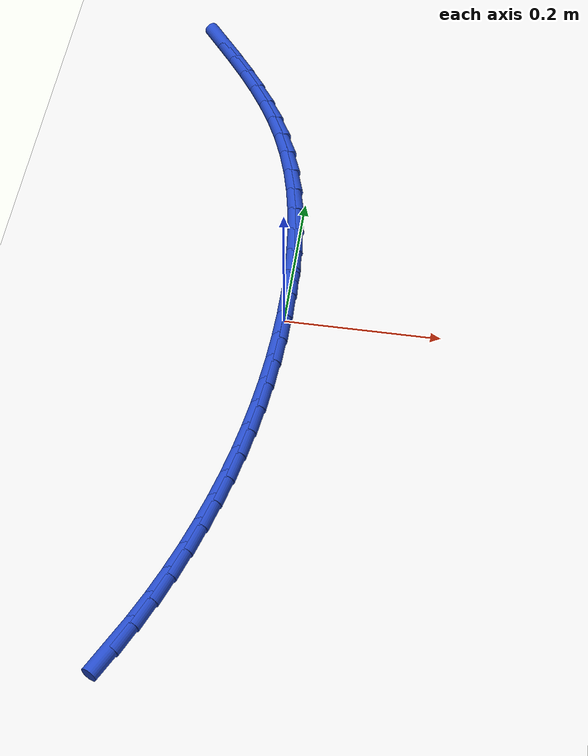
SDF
<sdf version="1.6">
 <world name="default">
  <model name="ground_plane">
   <static>1</static>
   <link name="link">
    <collision name="collision">
     <geometry><plane><normal>0 0 1</normal><size>100 100</size></plane></geometry>
     <surface><friction><ode><mu>100</mu><mu2>50</mu2></ode></friction></surface>
    </collision>
    <visual name="visual">
     <cast_shadows>0</cast_shadows>
     <geometry><plane><normal>0 0 1</normal><size>100 100</size></plane></geometry>
     <material>
      <script><uri>file://media/materials/scripts/gazebo.material</uri><name>Gazebo/WhiteGlow</name></script>
     </material>
    </visual>
   </link>
  </model>
  <model name="line">
   <link name="link_0">
    <pose>1.214306433183765e-17 2.7755575615628914e-17 0.01 0 1.57 1.5646358276059467</pose>
    <collision name="collision">
     <geometry><cylinder><radius>0.01</radius><length>0.08</length></cylinder></geometry>
    </collision>
    <visual name="visual">
     <material>
      <script><name>Gazebo/Blue</name><uri>file://media/materials/scripts/gazebo.material</uri></script>
     </material>
     <geometry><cylinder><radius>0.01</radius><length>0.08</length></cylinder></geometry>
    </visual>
   </link>
   <link name="link_1">
    <pose>0.00022275718261299585 0.036158492642460245 0.01 0 1.57 -1.5446809342096588</pose>
    <collision name="collision">
     <geometry><cylinder><radius>0.01</radius><length>0.08</length></cylinder></geometry>
    </collision>
    <visual name="visual">
     <material>
      <script><name>Gazebo/Blue</name><uri>file://media/materials/scripts/gazebo.material</uri></script>
     </material>
     <geometry><cylinder><radius>0.01</radius><length>0.08</length></cylinder></geometry>
    </visual>
   </link>
   <link name="link_2">
    <pose>-0.0007243705754948649 0.07241727861252063 0.01 0 1.57 -1.5091059318863258</pose>
    <collision name="collision">
     <geometry><cylinder><radius>0.01</radius><length>0.08</length></cylinder></geometry>
    </collision>
    <visual name="visual">
     <material>
      <script><name>Gazebo/Blue</name><uri>file://media/materials/scripts/gazebo.material</uri></script>
     </material>
     <geometry><cylinder><radius>0.01</radius><length>0.08</length></cylinder></geometry>
    </visual>
   </link>
   <link name="link_3">
    <pose>-0.002960141446029911 0.10861309039161447 0.01 0 1.57 -1.469855717839882</pose>
    <collision name="collision">
     <geometry><cylinder><radius>0.01</radius><length>0.08</length></cylinder></geometry>
    </collision>
    <visual name="visual">
     <material>
      <script><name>Gazebo/Blue</name><uri>file://media/materials/scripts/gazebo.material</uri></script>
     </material>
     <geometry><cylinder><radius>0.01</radius><length>0.08</length></cylinder></geometry>
    </visual>
   </link>
   <link name="link_4">
    <pose>-0.006603313600698487 0.1445826604611752 0.01 0 1.57 -1.4265185151365294</pose>
    <collision name="collision">
     <geometry><cylinder><radius>0.01</radius><length>0.08</length></cylinder></geometry>
    </collision>
    <visual name="visual">
     <material>
      <script><name>Gazebo/Blue</name><uri>file://media/materials/scripts/gazebo.material</uri></script>
     </material>
     <geometry><cylinder><radius>0.01</radius><length>0.08</length></cylinder></geometry>
    </visual>
   </link>
   <link name="link_5">
    <pose>-0.011772645211206944 0.18016272130263614 0.01 0 1.57 -1.3786550982861463</pose>
    <collision name="collision">
     <geometry><cylinder><radius>0.01</radius><length>0.08</length></cylinder></geometry>
    </collision>
    <visual name="visual">
     <material>
      <script><name>Gazebo/Blue</name><uri>file://media/materials/scripts/gazebo.material</uri></script>
     </material>
     <geometry><cylinder><radius>0.01</radius><length>0.08</length></cylinder></geometry>
    </visual>
   </link>
   <link name="link_6">
    <pose>-0.01858689444926162 0.21519000539743074 0.01 0 1.57 -1.3258145069641336</pose>
    <collision name="collision">
     <geometry><cylinder><radius>0.01</radius><length>0.08</length></cylinder></geometry>
    </collision>
    <visual name="visual">
     <material>
      <script><name>Gazebo/Blue</name><uri>file://media/materials/scripts/gazebo.material</uri></script>
     </material>
     <geometry><cylinder><radius>0.01</radius><length>0.08</length></cylinder></geometry>
    </visual>
   </link>
   <link name="link_7">
    <pose>-0.02716481948656886 0.24950124522699213 0.01 0 1.57 -1.2675604716059123</pose>
    <collision name="collision">
     <geometry><cylinder><radius>0.01</radius><length>0.08</length></cylinder></geometry>
    </collision>
    <visual name="visual">
     <material>
      <script><name>Gazebo/Blue</name><uri>file://media/materials/scripts/gazebo.material</uri></script>
     </material>
     <geometry><cylinder><radius>0.01</radius><length>0.08</length></cylinder></geometry>
    </visual>
   </link>
   <link name="link_8">
    <pose>-0.037625178494835 0.28293317327275386 0.01 0 1.57 -1.203511974484743</pose>
    <collision name="collision">
     <geometry><cylinder><radius>0.01</radius><length>0.08</length></cylinder></geometry>
    </collision>
    <visual name="visual">
     <material>
      <script><name>Gazebo/Blue</name><uri>file://media/materials/scripts/gazebo.material</uri></script>
     </material>
     <geometry><cylinder><radius>0.01</radius><length>0.08</length></cylinder></geometry>
    </visual>
   </link>
   <link name="link_9">
    <pose>-0.0500867296457664 0.3153225220161492 0.01 0 1.57 -1.1343039813078486</pose>
    <collision name="collision">
     <geometry><cylinder><radius>0.01</radius><length>0.08</length></cylinder></geometry>
    </collision>
    <visual name="visual">
     <material>
      <script><name>Gazebo/Blue</name><uri>file://media/materials/scripts/gazebo.material</uri></script>
     </material>
     <geometry><cylinder><radius>0.01</radius><length>0.08</length></cylinder></geometry>
    </visual>
   </link>
   <link name="link_10">
    <pose>-0.06464413219384604 0.3465279334582203 0.01 0 1.57 -1.0693498294287862</pose>
    <collision name="collision">
     <geometry><cylinder><radius>0.01</radius><length>0.08</length></cylinder></geometry>
    </collision>
    <visual name="visual">
     <material>
      <script><name>Gazebo/Blue</name><uri>file://media/materials/scripts/gazebo.material</uri></script>
     </material>
     <geometry><cylinder><radius>0.01</radius><length>0.08</length></cylinder></geometry>
    </visual>
   </link>
   <link name="link_11">
    <pose>-0.08114633587859307 0.3766314362935382 0.01 0 1.57 -1.0148216413763047</pose>
    <collision name="collision">
     <geometry><cylinder><radius>0.01</radius><length>0.08</length></cylinder></geometry>
    </collision>
    <visual name="visual">
     <material>
      <script><name>Gazebo/Blue</name><uri>file://media/materials/scripts/gazebo.material</uri></script>
     </material>
     <geometry><cylinder><radius>0.01</radius><length>0.08</length></cylinder></geometry>
    </visual>
   </link>
   <link name="link_12">
    <pose>-0.0992987237941108 0.4058455827669126 0.01 0 1.57 -0.9712359862877464</pose>
    <collision name="collision">
     <geometry><cylinder><radius>0.01</radius><length>0.08</length></cylinder></geometry>
    </collision>
    <visual name="visual">
     <material>
      <script><name>Gazebo/Blue</name><uri>file://media/materials/scripts/gazebo.material</uri></script>
     </material>
     <geometry><cylinder><radius>0.01</radius><length>0.08</length></cylinder></geometry>
    </visual>
   </link>
   <link name="link_13">
    <pose>-0.11880487657426363 0.43438456382905805 0.01 0 1.57 -0.9386740257295672</pose>
    <collision name="collision">
     <geometry><cylinder><radius>0.01</radius><length>0.08</length></cylinder></geometry>
    </collision>
    <visual name="visual">
     <material>
      <script><name>Gazebo/Blue</name><uri>file://media/materials/scripts/gazebo.material</uri></script>
     </material>
     <geometry><cylinder><radius>0.01</radius><length>0.08</length></cylinder></geometry>
    </visual>
   </link>
   <link name="link_14">
    <pose>-0.13936837485291595 0.46246257043068856 0.01 0 1.57 -0.9170043819340471</pose>
    <collision name="collision">
     <geometry><cylinder><radius>0.01</radius><length>0.08</length></cylinder></geometry>
    </collision>
    <visual name="visual">
     <material>
      <script><name>Gazebo/Blue</name><uri>file://media/materials/scripts/gazebo.material</uri></script>
     </material>
     <geometry><cylinder><radius>0.01</radius><length>0.08</length></cylinder></geometry>
    </visual>
   </link>
   <link name="link_15">
    <pose>-0.16069279926393235 0.4902937935225187 0.01 0 1.57 -0.9060036631063859</pose>
    <collision name="collision">
     <geometry><cylinder><radius>0.01</radius><length>0.08</length></cylinder></geometry>
    </collision>
    <visual name="visual">
     <material>
      <script><name>Gazebo/Blue</name><uri>file://media/materials/scripts/gazebo.material</uri></script>
     </material>
     <geometry><cylinder><radius>0.01</radius><length>0.08</length></cylinder></geometry>
    </visual>
   </link>
   <link name="link_176">
    <pose>-0.11954949663130426 -0.47973417575074745 0.01 0 1.57 1.101568799717634</pose>
    <collision name="collision">
     <geometry><cylinder><radius>0.01</radius><length>0.08</length></cylinder></geometry>
    </collision>
    <visual name="visual">
     <material>
      <script><name>Gazebo/Blue</name><uri>file://media/materials/scripts/gazebo.material</uri></script>
     </material>
     <geometry><cylinder><radius>0.01</radius><length>0.08</length></cylinder></geometry>
    </visual>
   </link>
   <link name="link_177">
    <pose>-0.10335991293536563 -0.4478017106244604 0.01 0 1.57 1.1414114649310614</pose>
    <collision name="collision">
     <geometry><cylinder><radius>0.01</radius><length>0.08</length></cylinder></geometry>
    </collision>
    <visual name="visual">
     <material>
      <script><name>Gazebo/Blue</name><uri>file://media/materials/scripts/gazebo.material</uri></script>
     </material>
     <geometry><cylinder><radius>0.01</radius><length>0.08</length></cylinder></geometry>
    </visual>
   </link>
   <link name="link_178">
    <pose>-0.08843209596835308 -0.4151994476121203 0.01 0 1.57 1.179041573828205</pose>
    <collision name="collision">
     <geometry><cylinder><radius>0.01</radius><length>0.08</length></cylinder></geometry>
    </collision>
    <visual name="visual">
     <material>
      <script><name>Gazebo/Blue</name><uri>file://media/materials/scripts/gazebo.material</uri></script>
     </material>
     <geometry><cylinder><radius>0.01</radius><length>0.08</length></cylinder></geometry>
    </visual>
   </link>
   <link name="link_179">
    <pose>-0.07473955585694271 -0.38205423646179415 0.01 0 1.57 1.2146859724361638</pose>
    <collision name="collision">
     <geometry><cylinder><radius>0.01</radius><length>0.08</length></cylinder></geometry>
    </collision>
    <visual name="visual">
     <material>
      <script><name>Gazebo/Blue</name><uri>file://media/materials/scripts/gazebo.material</uri></script>
     </material>
     <geometry><cylinder><radius>0.01</radius><length>0.08</length></cylinder></geometry>
    </visual>
   </link>
   <link name="link_180">
    <pose>-0.06225580272780966 -0.3484929269215463 0.01 0 1.57 1.2485757691102355</pose>
    <collision name="collision">
     <geometry><cylinder><radius>0.01</radius><length>0.08</length></cylinder></geometry>
    </collision>
    <visual name="visual">
     <material>
      <script><name>Gazebo/Blue</name><uri>file://media/materials/scripts/gazebo.material</uri></script>
     </material>
     <geometry><cylinder><radius>0.01</radius><length>0.08</length></cylinder></geometry>
    </visual>
   </link>
   <link name="link_181">
    <pose>-0.05095440915858599 -0.3146417883492143 0.01 0 1.57 1.2814361420054239</pose>
    <collision name="collision">
     <geometry><cylinder><radius>0.01</radius><length>0.08</length></cylinder></geometry>
    </collision>
    <visual name="visual">
     <material>
      <script><name>Gazebo/Blue</name><uri>file://media/materials/scripts/gazebo.material</uri></script>
     </material>
     <geometry><cylinder><radius>0.01</radius><length>0.08</length></cylinder></geometry>
    </visual>
   </link>
   <link name="link_182">
    <pose>-0.040813921969361955 -0.2805808617995037 0.01 0 1.57 1.3141780739984554</pose>
    <collision name="collision">
     <geometry><cylinder><radius>0.01</radius><length>0.08</length></cylinder></geometry>
    </collision>
    <visual name="visual">
     <material>
      <script><name>Gazebo/Blue</name><uri>file://media/materials/scripts/gazebo.material</uri></script>
     </material>
     <geometry><cylinder><radius>0.01</radius><length>0.08</length></cylinder></geometry>
    </visual>
   </link>
   <link name="link_183">
    <pose>-0.03182140122993311 -0.24631107013147654 0.01 0 1.57 1.3467945959359375</pose>
    <collision name="collision">
     <geometry><cylinder><radius>0.01</radius><length>0.08</length></cylinder></geometry>
    </collision>
    <visual name="visual">
     <material>
      <script><name>Gazebo/Blue</name><uri>file://media/materials/scripts/gazebo.material</uri></script>
     </material>
     <geometry><cylinder><radius>0.01</radius><length>0.08</length></cylinder></geometry>
    </visual>
   </link>
   <link name="link_184">
    <pose>-0.02396474198020192 -0.21182557637915184 0.01 0 1.57 1.3791892497501759</pose>
    <collision name="collision">
     <geometry><cylinder><radius>0.01</radius><length>0.08</length></cylinder></geometry>
    </collision>
    <visual name="visual">
     <material>
      <script><name>Gazebo/Blue</name><uri>file://media/materials/scripts/gazebo.material</uri></script>
     </material>
     <geometry><cylinder><radius>0.01</radius><length>0.08</length></cylinder></geometry>
    </visual>
   </link>
   <link name="link_185">
    <pose>-0.017231839260070755 -0.17711754357654808 0.01 0 1.57 1.4112686171850906</pose>
    <collision name="collision">
     <geometry><cylinder><radius>0.01</radius><length>0.08</length></cylinder></geometry>
    </collision>
    <visual name="visual">
     <material>
      <script><name>Gazebo/Blue</name><uri>file://media/materials/scripts/gazebo.material</uri></script>
     </material>
     <geometry><cylinder><radius>0.01</radius><length>0.08</length></cylinder></geometry>
    </visual>
   </link>
   <link name="link_186">
    <pose>-0.011610588109442158 -0.1421801347576848 0.01 0 1.57 1.4429436998599912</pose>
    <collision name="collision">
     <geometry><cylinder><radius>0.01</radius><length>0.08</length></cylinder></geometry>
    </collision>
    <visual name="visual">
     <material>
      <script><name>Gazebo/Blue</name><uri>file://media/materials/scripts/gazebo.material</uri></script>
     </material>
     <geometry><cylinder><radius>0.01</radius><length>0.08</length></cylinder></geometry>
    </visual>
   </link>
   <link name="link_187">
    <pose>-0.007088883568218291 -0.10700651295657922 0.01 0 1.57 1.4741311325141746</pose>
    <collision name="collision">
     <geometry><cylinder><radius>0.01</radius><length>0.08</length></cylinder></geometry>
    </collision>
    <visual name="visual">
     <material>
      <script><name>Gazebo/Blue</name><uri>file://media/materials/scripts/gazebo.material</uri></script>
     </material>
     <geometry><cylinder><radius>0.01</radius><length>0.08</length></cylinder></geometry>
    </visual>
   </link>
   <link name="link_188">
    <pose>-0.0036546206763016943 -0.0715898412072507 0.01 0 1.57 1.5047541921501915</pose>
    <collision name="collision">
     <geometry><cylinder><radius>0.01</radius><length>0.08</length></cylinder></geometry>
    </collision>
    <visual name="visual">
     <material>
      <script><name>Gazebo/Blue</name><uri>file://media/materials/scripts/gazebo.material</uri></script>
     </material>
     <geometry><cylinder><radius>0.01</radius><length>0.08</length></cylinder></geometry>
    </visual>
   </link>
   <link name="link_189">
    <pose>-0.0012956944735947884 -0.035923282543718 0.01 0 1.57 1.5347435790574395</pose>
    <collision name="collision">
     <geometry><cylinder><radius>0.01</radius><length>0.08</length></cylinder></geometry>
    </collision>
    <visual name="visual">
     <material>
      <script><name>Gazebo/Blue</name><uri>file://media/materials/scripts/gazebo.material</uri></script>
     </material>
     <geometry><cylinder><radius>0.01</radius><length>0.08</length></cylinder></geometry>
    </visual>
   </link>
   <link name="link_190">
    <pose>2.42861286636753e-17 1.8041124150158794e-16 0.01 0 1.57 1.5640379594416702</pose>
    <collision name="collision">
     <geometry><cylinder><radius>0.01</radius><length>0.08</length></cylinder></geometry>
    </collision>
    <visual name="visual">
     <material>
      <script><name>Gazebo/Blue</name><uri>file://media/materials/scripts/gazebo.material</uri></script>
     </material>
     <geometry><cylinder><radius>0.01</radius><length>0.08</length></cylinder></geometry>
    </visual>
   </link>
   <link name="link_191">
    <pose>0.00024456770458032573 0.036186843389885176 0.01 0 1.57 1.56403795944167</pose>
    <collision name="collision">
     <geometry><cylinder><radius>0.01</radius><length>0.08</length></cylinder></geometry>
    </collision>
    <visual name="visual">
     <material>
      <script><name>Gazebo/Blue</name><uri>file://media/materials/scripts/gazebo.material</uri></script>
     </material>
     <geometry><cylinder><radius>0.01</radius><length>0.08</length></cylinder></geometry>
    </visual>
   </link>
  </model>
 </world>
</sdf>
